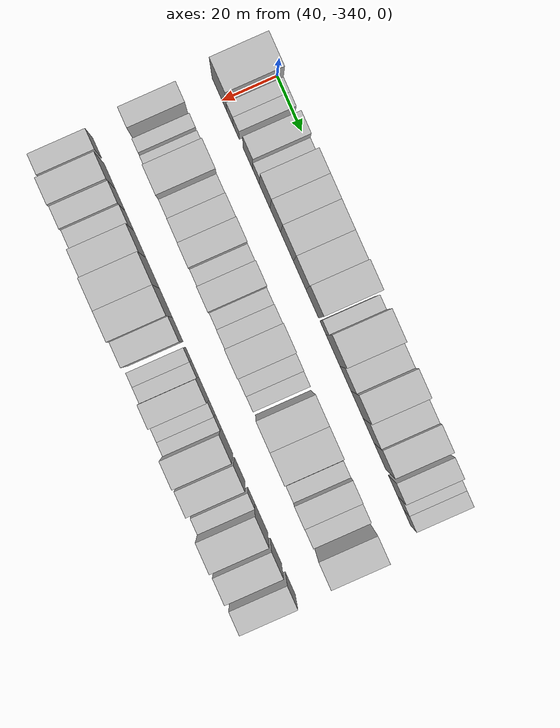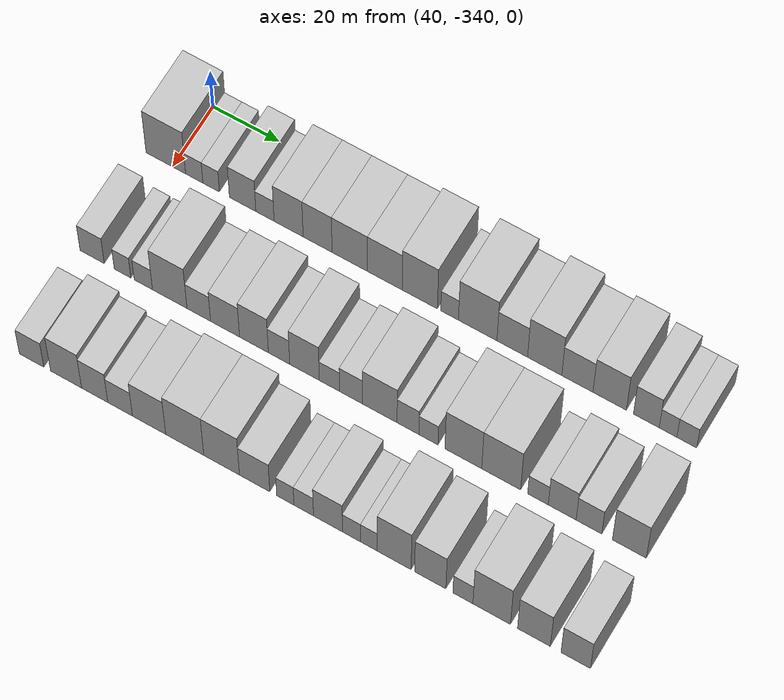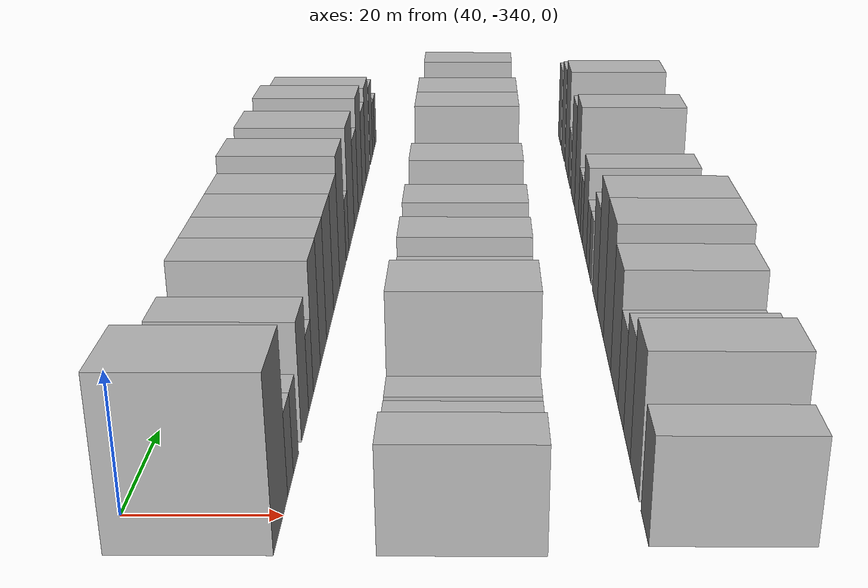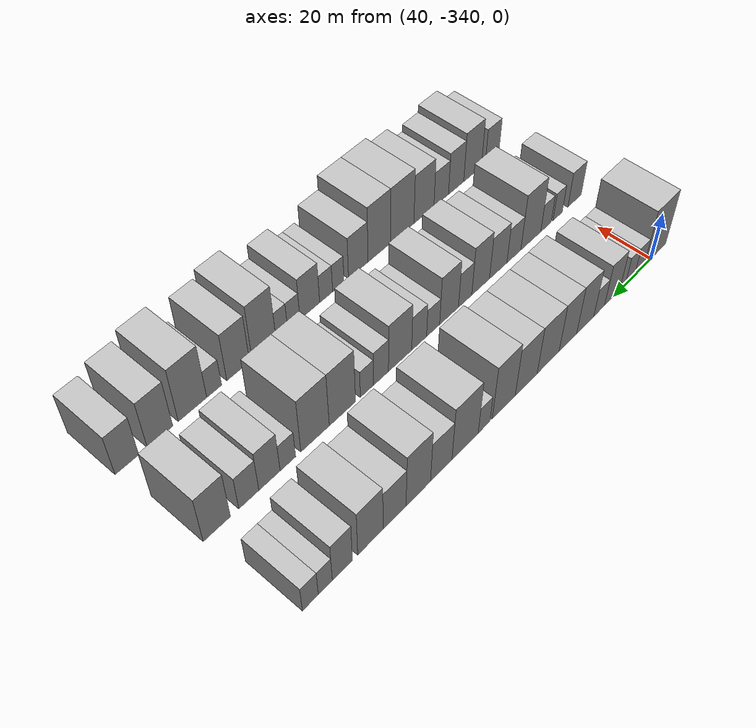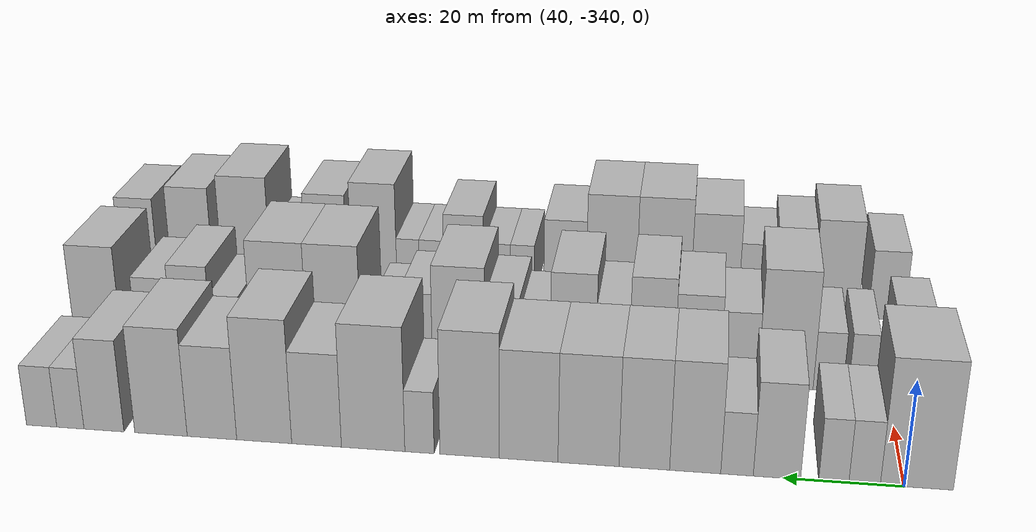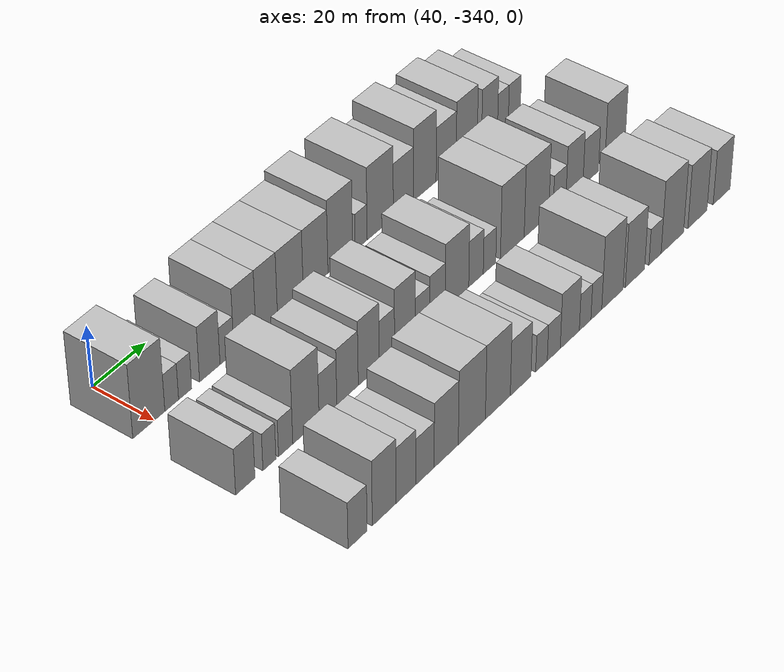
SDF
<sdf version="1.6">
 <world name="default">
  <model name="building_1">
   <static>1</static>
   <pose>50.0000 -342.0457 0 0.000000 0.000000 0.000000</pose>
   <link name="link">
    <pose>0 0 12.00 0 0 0</pose>
    <collision name="collision"><geometry><box><size>20.0000 11.9086 24.0000</size></box></geometry></collision>
    <visual name="visual">
     <cast_shadows>0</cast_shadows>
     <geometry><box><size>20.0000 11.9086 24.0000</size></box></geometry>
     <material>
      <script>
       <uri>model://HANNAS_wall/materials/scripts</uri>
       <uri>model://HANNAS_wall/materials/textures</uri>
       <name>vrc/HANNAS_wall</name>
      </script>
     </material>
    </visual>
   </link>
  </model>
  <model name="building_2">
   <static>1</static>
   <pose>50.0000 -333.5086 0 0.000000 0.000000 0.000000</pose>
   <link name="link">
    <pose>0 0 6.00 0 0 0</pose>
    <collision name="collision"><geometry><box><size>20.0000 5.1657 12.0000</size></box></geometry></collision>
    <visual name="visual">
     <cast_shadows>0</cast_shadows>
     <geometry><box><size>20.0000 5.1657 12.0000</size></box></geometry>
     <material>
      <script>
       <uri>model://HANNAS_wall/materials/scripts</uri>
       <uri>model://HANNAS_wall/materials/textures</uri>
       <name>vrc/HANNAS_wall</name>
      </script>
     </material>
    </visual>
   </link>
  </model>
  <model name="building_3">
   <static>1</static>
   <pose>50.0000 -328.4400 0 0.000000 0.000000 0.000000</pose>
   <link name="link">
    <pose>0 0 6.00 0 0 0</pose>
    <collision name="collision"><geometry><box><size>20.0000 4.9714 12.0000</size></box></geometry></collision>
    <visual name="visual">
     <cast_shadows>0</cast_shadows>
     <geometry><box><size>20.0000 4.9714 12.0000</size></box></geometry>
     <material>
      <script>
       <uri>model://HANNAS_wall/materials/scripts</uri>
       <uri>model://HANNAS_wall/materials/textures</uri>
       <name>vrc/HANNAS_wall</name>
      </script>
     </material>
    </visual>
   </link>
  </model>
  <model name="building_4">
   <static>1</static>
   <pose>50.0000 -319.0133 0 0.000000 0.000000 0.000000</pose>
   <link name="link">
    <pose>0 0 9.00 0 0 0</pose>
    <collision name="collision"><geometry><box><size>20.0000 7.8820 18.0000</size></box></geometry></collision>
    <visual name="visual">
     <cast_shadows>0</cast_shadows>
     <geometry><box><size>20.0000 7.8820 18.0000</size></box></geometry>
     <material>
      <script>
       <uri>model://HANNAS_wall/materials/scripts</uri>
       <uri>model://HANNAS_wall/materials/textures</uri>
       <name>vrc/HANNAS_wall</name>
      </script>
     </material>
    </visual>
   </link>
  </model>
  <model name="building_5">
   <static>1</static>
   <pose>50.0000 -312.3489 0 0.000000 0.000000 0.000000</pose>
   <link name="link">
    <pose>0 0 6.00 0 0 0</pose>
    <collision name="collision"><geometry><box><size>20.0000 5.4469 12.0000</size></box></geometry></collision>
    <visual name="visual">
     <cast_shadows>0</cast_shadows>
     <geometry><box><size>20.0000 5.4469 12.0000</size></box></geometry>
     <material>
      <script>
       <uri>model://HANNAS_wall/materials/scripts</uri>
       <uri>model://HANNAS_wall/materials/textures</uri>
       <name>vrc/HANNAS_wall</name>
      </script>
     </material>
    </visual>
   </link>
  </model>
  <model name="building_6">
   <static>1</static>
   <pose>50.0000 -305.3142 0 0.000000 0.000000 0.000000</pose>
   <link name="link">
    <pose>0 0 10.50 0 0 0</pose>
    <collision name="collision"><geometry><box><size>20.0000 8.6225 21.0000</size></box></geometry></collision>
    <visual name="visual">
     <cast_shadows>0</cast_shadows>
     <geometry><box><size>20.0000 8.6225 21.0000</size></box></geometry>
     <material>
      <script>
       <uri>model://HANNAS_wall/materials/scripts</uri>
       <uri>model://HANNAS_wall/materials/textures</uri>
       <name>vrc/HANNAS_wall</name>
      </script>
     </material>
    </visual>
   </link>
  </model>
  <model name="building_7">
   <static>1</static>
   <pose>50.0000 -296.7071 0 0.000000 0.000000 0.000000</pose>
   <link name="link">
    <pose>0 0 10.50 0 0 0</pose>
    <collision name="collision"><geometry><box><size>20.0000 8.5917 21.0000</size></box></geometry></collision>
    <visual name="visual">
     <cast_shadows>0</cast_shadows>
     <geometry><box><size>20.0000 8.5917 21.0000</size></box></geometry>
     <material>
      <script>
       <uri>model://HANNAS_wall/materials/scripts</uri>
       <uri>model://HANNAS_wall/materials/textures</uri>
       <name>vrc/HANNAS_wall</name>
      </script>
     </material>
    </visual>
   </link>
  </model>
  <model name="building_8">
   <static>1</static>
   <pose>50.0000 -287.1837 0 0.000000 0.000000 0.000000</pose>
   <link name="link">
    <pose>0 0 10.50 0 0 0</pose>
    <collision name="collision"><geometry><box><size>20.0000 10.4551 21.0000</size></box></geometry></collision>
    <visual name="visual">
     <cast_shadows>0</cast_shadows>
     <geometry><box><size>20.0000 10.4551 21.0000</size></box></geometry>
     <material>
      <script>
       <uri>model://HANNAS_wall/materials/scripts</uri>
       <uri>model://HANNAS_wall/materials/textures</uri>
       <name>vrc/HANNAS_wall</name>
      </script>
     </material>
    </visual>
   </link>
  </model>
  <model name="building_9">
   <static>1</static>
   <pose>50.0000 -276.8616 0 0.000000 0.000000 0.000000</pose>
   <link name="link">
    <pose>0 0 10.50 0 0 0</pose>
    <collision name="collision"><geometry><box><size>20.0000 10.1892 21.0000</size></box></geometry></collision>
    <visual name="visual">
     <cast_shadows>0</cast_shadows>
     <geometry><box><size>20.0000 10.1892 21.0000</size></box></geometry>
     <material>
      <script>
       <uri>model://HANNAS_wall/materials/scripts</uri>
       <uri>model://HANNAS_wall/materials/textures</uri>
       <name>vrc/HANNAS_wall</name>
      </script>
     </material>
    </visual>
   </link>
  </model>
  <model name="building_10">
   <static>1</static>
   <pose>50.0000 -266.6103 0 0.000000 0.000000 0.000000</pose>
   <link name="link">
    <pose>0 0 12.00 0 0 0</pose>
    <collision name="collision"><geometry><box><size>20.0000 10.3135 24.0000</size></box></geometry></collision>
    <visual name="visual">
     <cast_shadows>0</cast_shadows>
     <geometry><box><size>20.0000 10.3135 24.0000</size></box></geometry>
     <material>
      <script>
       <uri>model://HANNAS_wall/materials/scripts</uri>
       <uri>model://HANNAS_wall/materials/textures</uri>
       <name>vrc/HANNAS_wall</name>
      </script>
     </material>
    </visual>
   </link>
  </model>
  <model name="building_11">
   <static>1</static>
   <pose>50.0000 -257.8836 0 0.000000 0.000000 0.000000</pose>
   <link name="link">
    <pose>0 0 6.00 0 0 0</pose>
    <collision name="collision"><geometry><box><size>20.0000 5.1400 12.0000</size></box></geometry></collision>
    <visual name="visual">
     <cast_shadows>0</cast_shadows>
     <geometry><box><size>20.0000 5.1400 12.0000</size></box></geometry>
     <material>
      <script>
       <uri>model://HANNAS_wall/materials/scripts</uri>
       <uri>model://HANNAS_wall/materials/textures</uri>
       <name>vrc/HANNAS_wall</name>
      </script>
     </material>
    </visual>
   </link>
  </model>
  <model name="building_12">
   <static>1</static>
   <pose>50.0000 -249.6979 0 0.000000 0.000000 0.000000</pose>
   <link name="link">
    <pose>0 0 12.00 0 0 0</pose>
    <collision name="collision"><geometry><box><size>20.0000 11.2315 24.0000</size></box></geometry></collision>
    <visual name="visual">
     <cast_shadows>0</cast_shadows>
     <geometry><box><size>20.0000 11.2315 24.0000</size></box></geometry>
     <material>
      <script>
       <uri>model://HANNAS_wall/materials/scripts</uri>
       <uri>model://HANNAS_wall/materials/textures</uri>
       <name>vrc/HANNAS_wall</name>
      </script>
     </material>
    </visual>
   </link>
  </model>
  <model name="building_13">
   <static>1</static>
   <pose>50.0000 -239.6436 0 0.000000 0.000000 0.000000</pose>
   <link name="link">
    <pose>0 0 9.00 0 0 0</pose>
    <collision name="collision"><geometry><box><size>20.0000 8.8770 18.0000</size></box></geometry></collision>
    <visual name="visual">
     <cast_shadows>0</cast_shadows>
     <geometry><box><size>20.0000 8.8770 18.0000</size></box></geometry>
     <material>
      <script>
       <uri>model://HANNAS_wall/materials/scripts</uri>
       <uri>model://HANNAS_wall/materials/textures</uri>
       <name>vrc/HANNAS_wall</name>
      </script>
     </material>
    </visual>
   </link>
  </model>
  <model name="building_14">
   <static>1</static>
   <pose>50.0000 -230.2538 0 0.000000 0.000000 0.000000</pose>
   <link name="link">
    <pose>0 0 12.00 0 0 0</pose>
    <collision name="collision"><geometry><box><size>20.0000 9.9026 24.0000</size></box></geometry></collision>
    <visual name="visual">
     <cast_shadows>0</cast_shadows>
     <geometry><box><size>20.0000 9.9026 24.0000</size></box></geometry>
     <material>
      <script>
       <uri>model://HANNAS_wall/materials/scripts</uri>
       <uri>model://HANNAS_wall/materials/textures</uri>
       <name>vrc/HANNAS_wall</name>
      </script>
     </material>
    </visual>
   </link>
  </model>
  <model name="building_15">
   <static>1</static>
   <pose>50.0000 -220.8089 0 0.000000 0.000000 0.000000</pose>
   <link name="link">
    <pose>0 0 9.00 0 0 0</pose>
    <collision name="collision"><geometry><box><size>20.0000 8.9873 18.0000</size></box></geometry></collision>
    <visual name="visual">
     <cast_shadows>0</cast_shadows>
     <geometry><box><size>20.0000 8.9873 18.0000</size></box></geometry>
     <material>
      <script>
       <uri>model://HANNAS_wall/materials/scripts</uri>
       <uri>model://HANNAS_wall/materials/textures</uri>
       <name>vrc/HANNAS_wall</name>
      </script>
     </material>
    </visual>
   </link>
  </model>
  <model name="building_16">
   <static>1</static>
   <pose>50.0000 -211.5176 0 0.000000 0.000000 0.000000</pose>
   <link name="link">
    <pose>0 0 10.50 0 0 0</pose>
    <collision name="collision"><geometry><box><size>20.0000 9.5953 21.0000</size></box></geometry></collision>
    <visual name="visual">
     <cast_shadows>0</cast_shadows>
     <geometry><box><size>20.0000 9.5953 21.0000</size></box></geometry>
     <material>
      <script>
       <uri>model://HANNAS_wall/materials/scripts</uri>
       <uri>model://HANNAS_wall/materials/textures</uri>
       <name>vrc/HANNAS_wall</name>
      </script>
     </material>
    </visual>
   </link>
  </model>
  <model name="building_17">
   <static>1</static>
   <pose>50.0000 -201.0342 0 0.000000 0.000000 0.000000</pose>
   <link name="link">
    <pose>0 0 9.00 0 0 0</pose>
    <collision name="collision"><geometry><box><size>20.0000 7.3714 18.0000</size></box></geometry></collision>
    <visual name="visual">
     <cast_shadows>0</cast_shadows>
     <geometry><box><size>20.0000 7.3714 18.0000</size></box></geometry>
     <material>
      <script>
       <uri>model://HANNAS_wall/materials/scripts</uri>
       <uri>model://HANNAS_wall/materials/textures</uri>
       <name>vrc/HANNAS_wall</name>
      </script>
     </material>
    </visual>
   </link>
  </model>
  <model name="building_18">
   <static>1</static>
   <pose>50.0000 -194.8207 0 0.000000 0.000000 0.000000</pose>
   <link name="link">
    <pose>0 0 6.00 0 0 0</pose>
    <collision name="collision"><geometry><box><size>20.0000 5.0557 12.0000</size></box></geometry></collision>
    <visual name="visual">
     <cast_shadows>0</cast_shadows>
     <geometry><box><size>20.0000 5.0557 12.0000</size></box></geometry>
     <material>
      <script>
       <uri>model://HANNAS_wall/materials/scripts</uri>
       <uri>model://HANNAS_wall/materials/textures</uri>
       <name>vrc/HANNAS_wall</name>
      </script>
     </material>
    </visual>
   </link>
  </model>
  <model name="building_19">
   <static>1</static>
   <pose>50.0000 -189.4772 0 0.000000 0.000000 0.000000</pose>
   <link name="link">
    <pose>0 0 6.00 0 0 0</pose>
    <collision name="collision"><geometry><box><size>20.0000 5.6313 12.0000</size></box></geometry></collision>
    <visual name="visual">
     <cast_shadows>0</cast_shadows>
     <geometry><box><size>20.0000 5.6313 12.0000</size></box></geometry>
     <material>
      <script>
       <uri>model://HANNAS_wall/materials/scripts</uri>
       <uri>model://HANNAS_wall/materials/textures</uri>
       <name>vrc/HANNAS_wall</name>
      </script>
     </material>
    </visual>
   </link>
  </model>
  <model name="building_76">
   <static>1</static>
   <pose>82.0000 -344.3810 0 0.000000 0.000000 0.000000</pose>
   <link name="link">
    <pose>0 0 7.50 0 0 0</pose>
    <collision name="collision"><geometry><box><size>20.0000 7.2379 15.0000</size></box></geometry></collision>
    <visual name="visual">
     <cast_shadows>0</cast_shadows>
     <geometry><box><size>20.0000 7.2379 15.0000</size></box></geometry>
     <material>
      <script>
       <uri>model://HANNAS_wall/materials/scripts</uri>
       <uri>model://HANNAS_wall/materials/textures</uri>
       <name>vrc/HANNAS_wall</name>
      </script>
     </material>
    </visual>
   </link>
  </model>
  <model name="building_77">
   <static>1</static>
   <pose>82.0000 -335.2873 0 0.000000 0.000000 0.000000</pose>
   <link name="link">
    <pose>0 0 6.00 0 0 0</pose>
    <collision name="collision"><geometry><box><size>20.0000 4.9496 12.0000</size></box></geometry></collision>
    <visual name="visual">
     <cast_shadows>0</cast_shadows>
     <geometry><box><size>20.0000 4.9496 12.0000</size></box></geometry>
     <material>
      <script>
       <uri>model://HANNAS_wall/materials/scripts</uri>
       <uri>model://HANNAS_wall/materials/textures</uri>
       <name>vrc/HANNAS_wall</name>
      </script>
     </material>
    </visual>
   </link>
  </model>
  <model name="building_78">
   <static>1</static>
   <pose>82.0000 -329.0906 0 0.000000 0.000000 0.000000</pose>
   <link name="link">
    <pose>0 0 6.00 0 0 0</pose>
    <collision name="collision"><geometry><box><size>20.0000 5.4438 12.0000</size></box></geometry></collision>
    <visual name="visual">
     <cast_shadows>0</cast_shadows>
     <geometry><box><size>20.0000 5.4438 12.0000</size></box></geometry>
     <material>
      <script>
       <uri>model://HANNAS_wall/materials/scripts</uri>
       <uri>model://HANNAS_wall/materials/textures</uri>
       <name>vrc/HANNAS_wall</name>
      </script>
     </material>
    </visual>
   </link>
  </model>
  <model name="building_79">
   <static>1</static>
   <pose>82.0000 -321.2497 0 0.000000 0.000000 0.000000</pose>
   <link name="link">
    <pose>0 0 12.00 0 0 0</pose>
    <collision name="collision"><geometry><box><size>20.0000 10.2379 24.0000</size></box></geometry></collision>
    <visual name="visual">
     <cast_shadows>0</cast_shadows>
     <geometry><box><size>20.0000 10.2379 24.0000</size></box></geometry>
     <material>
      <script>
       <uri>model://HANNAS_wall/materials/scripts</uri>
       <uri>model://HANNAS_wall/materials/textures</uri>
       <name>vrc/HANNAS_wall</name>
      </script>
     </material>
    </visual>
   </link>
  </model>
  <model name="building_80">
   <static>1</static>
   <pose>82.0000 -312.6354 0 0.000000 0.000000 0.000000</pose>
   <link name="link">
    <pose>0 0 7.50 0 0 0</pose>
    <collision name="collision"><geometry><box><size>20.0000 6.9907 15.0000</size></box></geometry></collision>
    <visual name="visual">
     <cast_shadows>0</cast_shadows>
     <geometry><box><size>20.0000 6.9907 15.0000</size></box></geometry>
     <material>
      <script>
       <uri>model://HANNAS_wall/materials/scripts</uri>
       <uri>model://HANNAS_wall/materials/textures</uri>
       <name>vrc/HANNAS_wall</name>
      </script>
     </material>
    </visual>
   </link>
  </model>
  <model name="building_81">
   <static>1</static>
   <pose>82.0000 -304.8638 0 0.000000 0.000000 0.000000</pose>
   <link name="link">
    <pose>0 0 9.00 0 0 0</pose>
    <collision name="collision"><geometry><box><size>20.0000 8.5523 18.0000</size></box></geometry></collision>
    <visual name="visual">
     <cast_shadows>0</cast_shadows>
     <geometry><box><size>20.0000 8.5523 18.0000</size></box></geometry>
     <material>
      <script>
       <uri>model://HANNAS_wall/materials/scripts</uri>
       <uri>model://HANNAS_wall/materials/textures</uri>
       <name>vrc/HANNAS_wall</name>
      </script>
     </material>
    </visual>
   </link>
  </model>
  <model name="building_82">
   <static>1</static>
   <pose>82.0000 -296.3422 0 0.000000 0.000000 0.000000</pose>
   <link name="link">
    <pose>0 0 10.50 0 0 0</pose>
    <collision name="collision"><geometry><box><size>20.0000 8.4910 21.0000</size></box></geometry></collision>
    <visual name="visual">
     <cast_shadows>0</cast_shadows>
     <geometry><box><size>20.0000 8.4910 21.0000</size></box></geometry>
     <material>
      <script>
       <uri>model://HANNAS_wall/materials/scripts</uri>
       <uri>model://HANNAS_wall/materials/textures</uri>
       <name>vrc/HANNAS_wall</name>
      </script>
     </material>
    </visual>
   </link>
  </model>
  <model name="building_83">
   <static>1</static>
   <pose>82.0000 -288.9648 0 0.000000 0.000000 0.000000</pose>
   <link name="link">
    <pose>0 0 7.50 0 0 0</pose>
    <collision name="collision"><geometry><box><size>20.0000 6.2637 15.0000</size></box></geometry></collision>
    <visual name="visual">
     <cast_shadows>0</cast_shadows>
     <geometry><box><size>20.0000 6.2637 15.0000</size></box></geometry>
     <material>
      <script>
       <uri>model://HANNAS_wall/materials/scripts</uri>
       <uri>model://HANNAS_wall/materials/textures</uri>
       <name>vrc/HANNAS_wall</name>
      </script>
     </material>
    </visual>
   </link>
  </model>
  <model name="building_84">
   <static>1</static>
   <pose>82.0000 -281.4961 0 0.000000 0.000000 0.000000</pose>
   <link name="link">
    <pose>0 0 10.50 0 0 0</pose>
    <collision name="collision"><geometry><box><size>20.0000 8.6739 21.0000</size></box></geometry></collision>
    <visual name="visual">
     <cast_shadows>0</cast_shadows>
     <geometry><box><size>20.0000 8.6739 21.0000</size></box></geometry>
     <material>
      <script>
       <uri>model://HANNAS_wall/materials/scripts</uri>
       <uri>model://HANNAS_wall/materials/textures</uri>
       <name>vrc/HANNAS_wall</name>
      </script>
     </material>
    </visual>
   </link>
  </model>
  <model name="building_85">
   <static>1</static>
   <pose>82.0000 -274.2077 0 0.000000 0.000000 0.000000</pose>
   <link name="link">
    <pose>0 0 6.00 0 0 0</pose>
    <collision name="collision"><geometry><box><size>20.0000 5.9028 12.0000</size></box></geometry></collision>
    <visual name="visual">
     <cast_shadows>0</cast_shadows>
     <geometry><box><size>20.0000 5.9028 12.0000</size></box></geometry>
     <material>
      <script>
       <uri>model://HANNAS_wall/materials/scripts</uri>
       <uri>model://HANNAS_wall/materials/textures</uri>
       <name>vrc/HANNAS_wall</name>
      </script>
     </material>
    </visual>
   </link>
  </model>
  <model name="building_86">
   <static>1</static>
   <pose>82.0000 -267.9488 0 0.000000 0.000000 0.000000</pose>
   <link name="link">
    <pose>0 0 7.50 0 0 0</pose>
    <collision name="collision"><geometry><box><size>20.0000 6.6152 15.0000</size></box></geometry></collision>
    <visual name="visual">
     <cast_shadows>0</cast_shadows>
     <geometry><box><size>20.0000 6.6152 15.0000</size></box></geometry>
     <material>
      <script>
       <uri>model://HANNAS_wall/materials/scripts</uri>
       <uri>model://HANNAS_wall/materials/textures</uri>
       <name>vrc/HANNAS_wall</name>
      </script>
     </material>
    </visual>
   </link>
  </model>
  <model name="building_87">
   <static>1</static>
   <pose>82.0000 -259.5979 0 0.000000 0.000000 0.000000</pose>
   <link name="link">
    <pose>0 0 10.50 0 0 0</pose>
    <collision name="collision"><geometry><box><size>20.0000 10.0865 21.0000</size></box></geometry></collision>
    <visual name="visual">
     <cast_shadows>0</cast_shadows>
     <geometry><box><size>20.0000 10.0865 21.0000</size></box></geometry>
     <material>
      <script>
       <uri>model://HANNAS_wall/materials/scripts</uri>
       <uri>model://HANNAS_wall/materials/textures</uri>
       <name>vrc/HANNAS_wall</name>
      </script>
     </material>
    </visual>
   </link>
  </model>
  <model name="building_88">
   <static>1</static>
   <pose>82.0000 -251.3991 0 0.000000 0.000000 0.000000</pose>
   <link name="link">
    <pose>0 0 7.50 0 0 0</pose>
    <collision name="collision"><geometry><box><size>20.0000 6.3112 15.0000</size></box></geometry></collision>
    <visual name="visual">
     <cast_shadows>0</cast_shadows>
     <geometry><box><size>20.0000 6.3112 15.0000</size></box></geometry>
     <material>
      <script>
       <uri>model://HANNAS_wall/materials/scripts</uri>
       <uri>model://HANNAS_wall/materials/textures</uri>
       <name>vrc/HANNAS_wall</name>
      </script>
     </material>
    </visual>
   </link>
  </model>
  <model name="building_89">
   <static>1</static>
   <pose>82.0000 -245.4839 0 0.000000 0.000000 0.000000</pose>
   <link name="link">
    <pose>0 0 6.00 0 0 0</pose>
    <collision name="collision"><geometry><box><size>20.0000 5.5193 12.0000</size></box></geometry></collision>
    <visual name="visual">
     <cast_shadows>0</cast_shadows>
     <geometry><box><size>20.0000 5.5193 12.0000</size></box></geometry>
     <material>
      <script>
       <uri>model://HANNAS_wall/materials/scripts</uri>
       <uri>model://HANNAS_wall/materials/textures</uri>
       <name>vrc/HANNAS_wall</name>
      </script>
     </material>
    </visual>
   </link>
  </model>
  <model name="building_90">
   <static>1</static>
   <pose>82.0000 -235.4243 0 0.000000 0.000000 0.000000</pose>
   <link name="link">
    <pose>0 0 12.00 0 0 0</pose>
    <collision name="collision"><geometry><box><size>20.0000 10.5997 24.0000</size></box></geometry></collision>
    <visual name="visual">
     <cast_shadows>0</cast_shadows>
     <geometry><box><size>20.0000 10.5997 24.0000</size></box></geometry>
     <material>
      <script>
       <uri>model://HANNAS_wall/materials/scripts</uri>
       <uri>model://HANNAS_wall/materials/textures</uri>
       <name>vrc/HANNAS_wall</name>
      </script>
     </material>
    </visual>
   </link>
  </model>
  <model name="building_91">
   <static>1</static>
   <pose>82.0000 -224.5522 0 0.000000 0.000000 0.000000</pose>
   <link name="link">
    <pose>0 0 12.00 0 0 0</pose>
    <collision name="collision"><geometry><box><size>20.0000 11.1445 24.0000</size></box></geometry></collision>
    <visual name="visual">
     <cast_shadows>0</cast_shadows>
     <geometry><box><size>20.0000 11.1445 24.0000</size></box></geometry>
     <material>
      <script>
       <uri>model://HANNAS_wall/materials/scripts</uri>
       <uri>model://HANNAS_wall/materials/textures</uri>
       <name>vrc/HANNAS_wall</name>
      </script>
     </material>
    </visual>
   </link>
  </model>
  <model name="building_92">
   <static>1</static>
   <pose>82.0000 -214.0313 0 0.000000 0.000000 0.000000</pose>
   <link name="link">
    <pose>0 0 6.00 0 0 0</pose>
    <collision name="collision"><geometry><box><size>20.0000 5.8974 12.0000</size></box></geometry></collision>
    <visual name="visual">
     <cast_shadows>0</cast_shadows>
     <geometry><box><size>20.0000 5.8974 12.0000</size></box></geometry>
     <material>
      <script>
       <uri>model://HANNAS_wall/materials/scripts</uri>
       <uri>model://HANNAS_wall/materials/textures</uri>
       <name>vrc/HANNAS_wall</name>
      </script>
     </material>
    </visual>
   </link>
  </model>
  <model name="building_93">
   <static>1</static>
   <pose>82.0000 -207.1233 0 0.000000 0.000000 0.000000</pose>
   <link name="link">
    <pose>0 0 9.00 0 0 0</pose>
    <collision name="collision"><geometry><box><size>20.0000 7.9185 18.0000</size></box></geometry></collision>
    <visual name="visual">
     <cast_shadows>0</cast_shadows>
     <geometry><box><size>20.0000 7.9185 18.0000</size></box></geometry>
     <material>
      <script>
       <uri>model://HANNAS_wall/materials/scripts</uri>
       <uri>model://HANNAS_wall/materials/textures</uri>
       <name>vrc/HANNAS_wall</name>
      </script>
     </material>
    </visual>
   </link>
  </model>
  <model name="building_94">
   <static>1</static>
   <pose>82.0000 -199.5191 0 0.000000 0.000000 0.000000</pose>
   <link name="link">
    <pose>0 0 7.50 0 0 0</pose>
    <collision name="collision"><geometry><box><size>20.0000 7.2900 15.0000</size></box></geometry></collision>
    <visual name="visual">
     <cast_shadows>0</cast_shadows>
     <geometry><box><size>20.0000 7.2900 15.0000</size></box></geometry>
     <material>
      <script>
       <uri>model://HANNAS_wall/materials/scripts</uri>
       <uri>model://HANNAS_wall/materials/textures</uri>
       <name>vrc/HANNAS_wall</name>
      </script>
     </material>
    </visual>
   </link>
  </model>
  <model name="building_95">
   <static>1</static>
   <pose>82.0000 -188.0851 0 0.000000 0.000000 0.000000</pose>
   <link name="link">
    <pose>0 0 10.50 0 0 0</pose>
    <collision name="collision"><geometry><box><size>20.0000 9.5780 21.0000</size></box></geometry></collision>
    <visual name="visual">
     <cast_shadows>0</cast_shadows>
     <geometry><box><size>20.0000 9.5780 21.0000</size></box></geometry>
     <material>
      <script>
       <uri>model://HANNAS_wall/materials/scripts</uri>
       <uri>model://HANNAS_wall/materials/textures</uri>
       <name>vrc/HANNAS_wall</name>
      </script>
     </material>
    </visual>
   </link>
  </model>
  <model name="building_154">
   <static>1</static>
   <pose>114.0000 -342.3714 0 0.000000 0.000000 0.000000</pose>
   <link name="link">
    <pose>0 0 7.50 0 0 0</pose>
    <collision name="collision"><geometry><box><size>20.0000 7.2573 15.0000</size></box></geometry></collision>
    <visual name="visual">
     <cast_shadows>0</cast_shadows>
     <geometry><box><size>20.0000 7.2573 15.0000</size></box></geometry>
     <material>
      <script>
       <uri>model://HANNAS_wall/materials/scripts</uri>
       <uri>model://HANNAS_wall/materials/textures</uri>
       <name>vrc/HANNAS_wall</name>
      </script>
     </material>
    </visual>
   </link>
  </model>
  <model name="building_155">
   <static>1</static>
   <pose>114.0000 -332.1371 0 0.000000 0.000000 0.000000</pose>
   <link name="link">
    <pose>0 0 10.50 0 0 0</pose>
    <collision name="collision"><geometry><box><size>20.0000 9.2113 21.0000</size></box></geometry></collision>
    <visual name="visual">
     <cast_shadows>0</cast_shadows>
     <geometry><box><size>20.0000 9.2113 21.0000</size></box></geometry>
     <material>
      <script>
       <uri>model://HANNAS_wall/materials/scripts</uri>
       <uri>model://HANNAS_wall/materials/textures</uri>
       <name>vrc/HANNAS_wall</name>
      </script>
     </material>
    </visual>
   </link>
  </model>
  <model name="building_156">
   <static>1</static>
   <pose>114.0000 -323.6603 0 0.000000 0.000000 0.000000</pose>
   <link name="link">
    <pose>0 0 9.00 0 0 0</pose>
    <collision name="collision"><geometry><box><size>20.0000 7.7422 18.0000</size></box></geometry></collision>
    <visual name="visual">
     <cast_shadows>0</cast_shadows>
     <geometry><box><size>20.0000 7.7422 18.0000</size></box></geometry>
     <material>
      <script>
       <uri>model://HANNAS_wall/materials/scripts</uri>
       <uri>model://HANNAS_wall/materials/textures</uri>
       <name>vrc/HANNAS_wall</name>
      </script>
     </material>
    </visual>
   </link>
  </model>
  <model name="building_157">
   <static>1</static>
   <pose>114.0000 -316.1617 0 0.000000 0.000000 0.000000</pose>
   <link name="link">
    <pose>0 0 7.50 0 0 0</pose>
    <collision name="collision"><geometry><box><size>20.0000 7.2550 15.0000</size></box></geometry></collision>
    <visual name="visual">
     <cast_shadows>0</cast_shadows>
     <geometry><box><size>20.0000 7.2550 15.0000</size></box></geometry>
     <material>
      <script>
       <uri>model://HANNAS_wall/materials/scripts</uri>
       <uri>model://HANNAS_wall/materials/textures</uri>
       <name>vrc/HANNAS_wall</name>
      </script>
     </material>
    </visual>
   </link>
  </model>
  <model name="building_158">
   <static>1</static>
   <pose>114.0000 -307.6464 0 0.000000 0.000000 0.000000</pose>
   <link name="link">
    <pose>0 0 10.50 0 0 0</pose>
    <collision name="collision"><geometry><box><size>20.0000 9.7757 21.0000</size></box></geometry></collision>
    <visual name="visual">
     <cast_shadows>0</cast_shadows>
     <geometry><box><size>20.0000 9.7757 21.0000</size></box></geometry>
     <material>
      <script>
       <uri>model://HANNAS_wall/materials/scripts</uri>
       <uri>model://HANNAS_wall/materials/textures</uri>
       <name>vrc/HANNAS_wall</name>
      </script>
     </material>
    </visual>
   </link>
  </model>
  <model name="building_159">
   <static>1</static>
   <pose>114.0000 -297.2034 0 0.000000 0.000000 0.000000</pose>
   <link name="link">
    <pose>0 0 12.00 0 0 0</pose>
    <collision name="collision"><geometry><box><size>20.0000 11.1104 24.0000</size></box></geometry></collision>
    <visual name="visual">
     <cast_shadows>0</cast_shadows>
     <geometry><box><size>20.0000 11.1104 24.0000</size></box></geometry>
     <material>
      <script>
       <uri>model://HANNAS_wall/materials/scripts</uri>
       <uri>model://HANNAS_wall/materials/textures</uri>
       <name>vrc/HANNAS_wall</name>
      </script>
     </material>
    </visual>
   </link>
  </model>
  <model name="building_160">
   <static>1</static>
   <pose>114.0000 -286.4480 0 0.000000 0.000000 0.000000</pose>
   <link name="link">
    <pose>0 0 12.00 0 0 0</pose>
    <collision name="collision"><geometry><box><size>20.0000 10.4004 24.0000</size></box></geometry></collision>
    <visual name="visual">
     <cast_shadows>0</cast_shadows>
     <geometry><box><size>20.0000 10.4004 24.0000</size></box></geometry>
     <material>
      <script>
       <uri>model://HANNAS_wall/materials/scripts</uri>
       <uri>model://HANNAS_wall/materials/textures</uri>
       <name>vrc/HANNAS_wall</name>
      </script>
     </material>
    </visual>
   </link>
  </model>
  <model name="building_161">
   <static>1</static>
   <pose>114.0000 -276.8543 0 0.000000 0.000000 0.000000</pose>
   <link name="link">
    <pose>0 0 9.00 0 0 0</pose>
    <collision name="collision"><geometry><box><size>20.0000 8.7870 18.0000</size></box></geometry></collision>
    <visual name="visual">
     <cast_shadows>0</cast_shadows>
     <geometry><box><size>20.0000 8.7870 18.0000</size></box></geometry>
     <material>
      <script>
       <uri>model://HANNAS_wall/materials/scripts</uri>
       <uri>model://HANNAS_wall/materials/textures</uri>
       <name>vrc/HANNAS_wall</name>
      </script>
     </material>
    </visual>
   </link>
  </model>
  <model name="building_162">
   <static>1</static>
   <pose>114.0000 -267.9633 0 0.000000 0.000000 0.000000</pose>
   <link name="link">
    <pose>0 0 6.00 0 0 0</pose>
    <collision name="collision"><geometry><box><size>20.0000 4.9950 12.0000</size></box></geometry></collision>
    <visual name="visual">
     <cast_shadows>0</cast_shadows>
     <geometry><box><size>20.0000 4.9950 12.0000</size></box></geometry>
     <material>
      <script>
       <uri>model://HANNAS_wall/materials/scripts</uri>
       <uri>model://HANNAS_wall/materials/textures</uri>
       <name>vrc/HANNAS_wall</name>
      </script>
     </material>
    </visual>
   </link>
  </model>
  <model name="building_163">
   <static>1</static>
   <pose>114.0000 -262.6459 0 0.000000 0.000000 0.000000</pose>
   <link name="link">
    <pose>0 0 6.00 0 0 0</pose>
    <collision name="collision"><geometry><box><size>20.0000 5.6398 12.0000</size></box></geometry></collision>
    <visual name="visual">
     <cast_shadows>0</cast_shadows>
     <geometry><box><size>20.0000 5.6398 12.0000</size></box></geometry>
     <material>
      <script>
       <uri>model://HANNAS_wall/materials/scripts</uri>
       <uri>model://HANNAS_wall/materials/textures</uri>
       <name>vrc/HANNAS_wall</name>
      </script>
     </material>
    </visual>
   </link>
  </model>
  <model name="building_164">
   <static>1</static>
   <pose>114.0000 -255.6421 0 0.000000 0.000000 0.000000</pose>
   <link name="link">
    <pose>0 0 9.00 0 0 0</pose>
    <collision name="collision"><geometry><box><size>20.0000 8.3678 18.0000</size></box></geometry></collision>
    <visual name="visual">
     <cast_shadows>0</cast_shadows>
     <geometry><box><size>20.0000 8.3678 18.0000</size></box></geometry>
     <material>
      <script>
       <uri>model://HANNAS_wall/materials/scripts</uri>
       <uri>model://HANNAS_wall/materials/textures</uri>
       <name>vrc/HANNAS_wall</name>
      </script>
     </material>
    </visual>
   </link>
  </model>
  <model name="building_165">
   <static>1</static>
   <pose>114.0000 -248.8841 0 0.000000 0.000000 0.000000</pose>
   <link name="link">
    <pose>0 0 6.00 0 0 0</pose>
    <collision name="collision"><geometry><box><size>20.0000 5.1481 12.0000</size></box></geometry></collision>
    <visual name="visual">
     <cast_shadows>0</cast_shadows>
     <geometry><box><size>20.0000 5.1481 12.0000</size></box></geometry>
     <material>
      <script>
       <uri>model://HANNAS_wall/materials/scripts</uri>
       <uri>model://HANNAS_wall/materials/textures</uri>
       <name>vrc/HANNAS_wall</name>
      </script>
     </material>
    </visual>
   </link>
  </model>
  <model name="building_166">
   <static>1</static>
   <pose>114.0000 -243.8993 0 0.000000 0.000000 0.000000</pose>
   <link name="link">
    <pose>0 0 6.00 0 0 0</pose>
    <collision name="collision"><geometry><box><size>20.0000 4.8216 12.0000</size></box></geometry></collision>
    <visual name="visual">
     <cast_shadows>0</cast_shadows>
     <geometry><box><size>20.0000 4.8216 12.0000</size></box></geometry>
     <material>
      <script>
       <uri>model://HANNAS_wall/materials/scripts</uri>
       <uri>model://HANNAS_wall/materials/textures</uri>
       <name>vrc/HANNAS_wall</name>
      </script>
     </material>
    </visual>
   </link>
  </model>
  <model name="building_167">
   <static>1</static>
   <pose>114.0000 -236.6598 0 0.000000 0.000000 0.000000</pose>
   <link name="link">
    <pose>0 0 12.00 0 0 0</pose>
    <collision name="collision"><geometry><box><size>20.0000 9.6574 24.0000</size></box></geometry></collision>
    <visual name="visual">
     <cast_shadows>0</cast_shadows>
     <geometry><box><size>20.0000 9.6574 24.0000</size></box></geometry>
     <material>
      <script>
       <uri>model://HANNAS_wall/materials/scripts</uri>
       <uri>model://HANNAS_wall/materials/textures</uri>
       <name>vrc/HANNAS_wall</name>
      </script>
     </material>
    </visual>
   </link>
  </model>
  <model name="building_168">
   <static>1</static>
   <pose>114.0000 -226.3784 0 0.000000 0.000000 0.000000</pose>
   <link name="link">
    <pose>0 0 10.50 0 0 0</pose>
    <collision name="collision"><geometry><box><size>20.0000 8.9053 21.0000</size></box></geometry></collision>
    <visual name="visual">
     <cast_shadows>0</cast_shadows>
     <geometry><box><size>20.0000 8.9053 21.0000</size></box></geometry>
     <material>
      <script>
       <uri>model://HANNAS_wall/materials/scripts</uri>
       <uri>model://HANNAS_wall/materials/textures</uri>
       <name>vrc/HANNAS_wall</name>
      </script>
     </material>
    </visual>
   </link>
  </model>
  <model name="building_169">
   <static>1</static>
   <pose>114.0000 -217.0894 0 0.000000 0.000000 0.000000</pose>
   <link name="link">
    <pose>0 0 6.00 0 0 0</pose>
    <collision name="collision"><geometry><box><size>20.0000 5.6727 12.0000</size></box></geometry></collision>
    <visual name="visual">
     <cast_shadows>0</cast_shadows>
     <geometry><box><size>20.0000 5.6727 12.0000</size></box></geometry>
     <material>
      <script>
       <uri>model://HANNAS_wall/materials/scripts</uri>
       <uri>model://HANNAS_wall/materials/textures</uri>
       <name>vrc/HANNAS_wall</name>
      </script>
     </material>
    </visual>
   </link>
  </model>
  <model name="building_170">
   <static>1</static>
   <pose>114.0000 -208.9394 0 0.000000 0.000000 0.000000</pose>
   <link name="link">
    <pose>0 0 12.00 0 0 0</pose>
    <collision name="collision"><geometry><box><size>20.0000 10.6274 24.0000</size></box></geometry></collision>
    <visual name="visual">
     <cast_shadows>0</cast_shadows>
     <geometry><box><size>20.0000 10.6274 24.0000</size></box></geometry>
     <material>
      <script>
       <uri>model://HANNAS_wall/materials/scripts</uri>
       <uri>model://HANNAS_wall/materials/textures</uri>
       <name>vrc/HANNAS_wall</name>
      </script>
     </material>
    </visual>
   </link>
  </model>
  <model name="building_171">
   <static>1</static>
   <pose>114.0000 -197.0149 0 0.000000 0.000000 0.000000</pose>
   <link name="link">
    <pose>0 0 10.50 0 0 0</pose>
    <collision name="collision"><geometry><box><size>20.0000 9.2215 21.0000</size></box></geometry></collision>
    <visual name="visual">
     <cast_shadows>0</cast_shadows>
     <geometry><box><size>20.0000 9.2215 21.0000</size></box></geometry>
     <material>
      <script>
       <uri>model://HANNAS_wall/materials/scripts</uri>
       <uri>model://HANNAS_wall/materials/textures</uri>
       <name>vrc/HANNAS_wall</name>
      </script>
     </material>
    </visual>
   </link>
  </model>
  <model name="building_172">
   <static>1</static>
   <pose>114.0000 -185.2752 0 0.000000 0.000000 0.000000</pose>
   <link name="link">
    <pose>0 0 9.00 0 0 0</pose>
    <collision name="collision"><geometry><box><size>20.0000 8.2580 18.0000</size></box></geometry></collision>
    <visual name="visual">
     <cast_shadows>0</cast_shadows>
     <geometry><box><size>20.0000 8.2580 18.0000</size></box></geometry>
     <material>
      <script>
       <uri>model://HANNAS_wall/materials/scripts</uri>
       <uri>model://HANNAS_wall/materials/textures</uri>
       <name>vrc/HANNAS_wall</name>
      </script>
     </material>
    </visual>
   </link>
  </model>
 </world>
</sdf>
